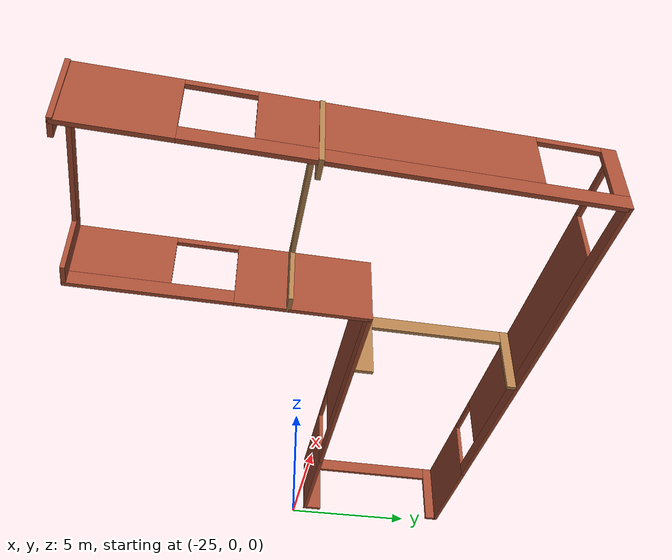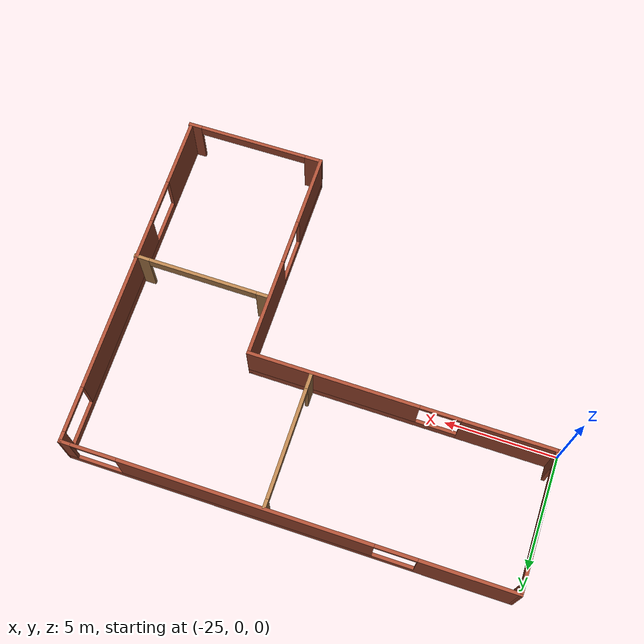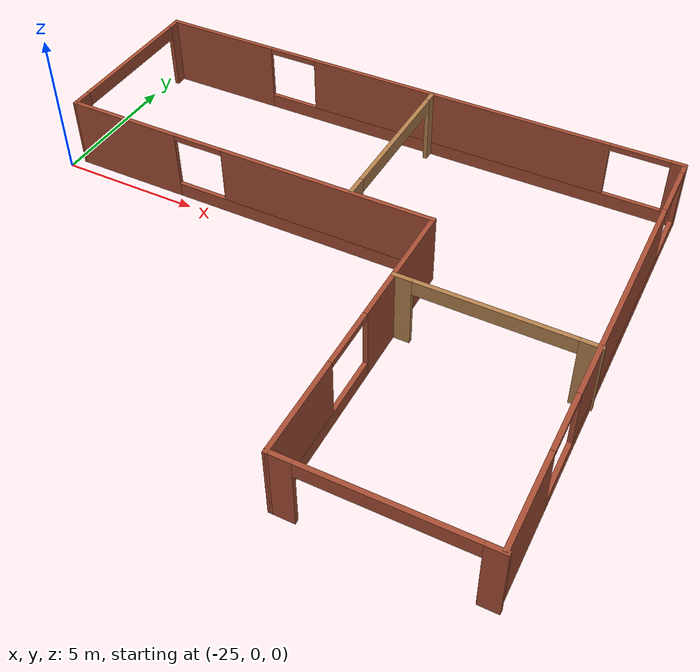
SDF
<?xml version='1.0'?>
<sdf version='1.6'>
  <model name='Building_01'>
    <pose frame=''>-14.907 -1.31654 0 0 -0 0</pose>
    <link name='Wall_1'>
      <pose frame=''>-0.117558 7.8209 0 0 -0 0</pose>
      <visual name='Wall_1_Visual_0'>
        <pose frame=''>-7.62078 0 1.25 0 -0 0</pose>
        <geometry>
          <box>
            <size>4.25844 0.15 2.5</size>
          </box>
        </geometry>
        <material>
          <script>
            <uri>file://media/materials/scripts/gazebo.material</uri>
            <name>Gazebo/Bricks</name>
          </script>
          <ambient>1 1 1 1</ambient>
        </material>
        <meta>
          <layer>0</layer>
        </meta>
      </visual>
      <collision name='Wall_1_Collision_0'>
        <geometry>
          <box>
            <size>4.25844 0.15 2.5</size>
          </box>
        </geometry>
        <pose frame=''>-7.62078 0 1.25 0 -0 0</pose>
      </collision>
      <visual name='Wall_1_Visual_1'>
        <pose frame=''>2.12922 0 0.25 0 -0 0</pose>
        <geometry>
          <box>
            <size>15.2416 0.15 0.5</size>
          </box>
        </geometry>
        <material>
          <script>
            <uri>file://media/materials/scripts/gazebo.material</uri>
            <name>Gazebo/Bricks</name>
          </script>
          <ambient>1 1 1 1</ambient>
        </material>
        <meta>
          <layer>0</layer>
        </meta>
      </visual>
      <collision name='Wall_1_Collision_1'>
        <geometry>
          <box>
            <size>15.2416 0.15 0.5</size>
          </box>
        </geometry>
        <pose frame=''>2.12922 0 0.25 0 -0 0</pose>
      </collision>
      <visual name='Wall_1_Visual_2'>
        <pose frame=''>1.79308 0 1.5 0 -0 0</pose>
        <geometry>
          <box>
            <size>10.9693 0.15 2</size>
          </box>
        </geometry>
        <material>
          <script>
            <uri>file://media/materials/scripts/gazebo.material</uri>
            <name>Gazebo/Bricks</name>
          </script>
          <ambient>1 1 1 1</ambient>
        </material>
        <meta>
          <layer>0</layer>
        </meta>
      </visual>
      <collision name='Wall_1_Collision_2'>
        <geometry>
          <box>
            <size>10.9693 0.15 2</size>
          </box>
        </geometry>
        <pose frame=''>1.79308 0 1.5 0 -0 0</pose>
      </collision>
      <visual name='Wall_1_Visual_3'>
        <pose frame=''>9.51386 0 1.5 0 -0 0</pose>
        <geometry>
          <box>
            <size>0.472274 0.15 2</size>
          </box>
        </geometry>
        <material>
          <script>
            <uri>file://media/materials/scripts/gazebo.material</uri>
            <name>Gazebo/Bricks</name>
          </script>
          <ambient>1 1 1 1</ambient>
        </material>
        <meta>
          <layer>0</layer>
        </meta>
      </visual>
      <collision name='Wall_1_Collision_3'>
        <geometry>
          <box>
            <size>0.472274 0.15 2</size>
          </box>
        </geometry>
        <pose frame=''>9.51386 0 1.5 0 -0 0</pose>
      </collision>
      <visual name='Wall_1_Visual_4'>
        <pose frame=''>-4.59156 0 2.4 0 -0 0</pose>
        <geometry>
          <box>
            <size>1.8 0.15 0.2</size>
          </box>
        </geometry>
        <material>
          <script>
            <uri>file://media/materials/scripts/gazebo.material</uri>
            <name>Gazebo/Bricks</name>
          </script>
          <ambient>1 1 1 1</ambient>
        </material>
        <meta>
          <layer>0</layer>
        </meta>
      </visual>
      <collision name='Wall_1_Collision_4'>
        <geometry>
          <box>
            <size>1.8 0.15 0.2</size>
          </box>
        </geometry>
        <pose frame=''>-4.59156 0 2.4 0 -0 0</pose>
      </collision>
      <visual name='Wall_1_Visual_5'>
        <pose frame=''>8.27773 0 2.4 0 -0 0</pose>
        <geometry>
          <box>
            <size>2 0.15 0.2</size>
          </box>
        </geometry>
        <material>
          <script>
            <uri>file://media/materials/scripts/gazebo.material</uri>
            <name>Gazebo/Bricks</name>
          </script>
          <ambient>1 1 1 1</ambient>
        </material>
        <meta>
          <layer>0</layer>
        </meta>
      </visual>
      <collision name='Wall_1_Collision_5'>
        <geometry>
          <box>
            <size>2 0.15 0.2</size>
          </box>
        </geometry>
        <pose frame=''>8.27773 0 2.4 0 -0 0</pose>
      </collision>
    </link>
    <link name='Wall_15'>
      <pose frame=''>0.81395 4.81357 0 0 0 -1.5708</pose>
      <visual name='Wall_15_Visual_0'>
        <pose frame=''>-2.79794 0 1.25 0 -0 0</pose>
        <geometry>
          <box>
            <size>0.404122 0.15 2.5</size>
          </box>
        </geometry>
        <material>
          <script>
            <uri>file://media/materials/scripts/gazebo.material</uri>
            <name>Gazebo/Wood</name>
          </script>
          <ambient>1 1 1 1</ambient>
        </material>
        <meta>
          <layer>0</layer>
        </meta>
      </visual>
      <collision name='Wall_15_Collision_0'>
        <geometry>
          <box>
            <size>0.404122 0.15 2.5</size>
          </box>
        </geometry>
        <pose frame=''>-2.79794 0 1.25 0 -0 0</pose>
      </collision>
      <visual name='Wall_15_Visual_1'>
        <pose frame=''>2.65206 0 1.25 0 -0 0</pose>
        <geometry>
          <box>
            <size>0.695878 0.15 2.5</size>
          </box>
        </geometry>
        <material>
          <script>
            <uri>file://media/materials/scripts/gazebo.material</uri>
            <name>Gazebo/Wood</name>
          </script>
          <ambient>1 1 1 1</ambient>
        </material>
        <meta>
          <layer>0</layer>
        </meta>
      </visual>
      <collision name='Wall_15_Collision_1'>
        <geometry>
          <box>
            <size>0.695878 0.15 2.5</size>
          </box>
        </geometry>
        <pose frame=''>2.65206 0 1.25 0 -0 0</pose>
      </collision>
      <visual name='Wall_15_Visual_2'>
        <pose frame=''>-0.145878 0 2.25 0 -0 0</pose>
        <geometry>
          <box>
            <size>4.9 0.15 0.5</size>
          </box>
        </geometry>
        <material>
          <script>
            <uri>file://media/materials/scripts/gazebo.material</uri>
            <name>Gazebo/Wood</name>
          </script>
          <ambient>1 1 1 1</ambient>
        </material>
        <meta>
          <layer>0</layer>
        </meta>
      </visual>
      <collision name='Wall_15_Collision_2'>
        <geometry>
          <box>
            <size>4.9 0.15 0.5</size>
          </box>
        </geometry>
        <pose frame=''>-0.145878 0 2.25 0 -0 0</pose>
      </collision>
    </link>
    <link name='Wall_17'>
      <pose frame=''>6.67825 -0.880227 0 0 -0 0</pose>
      <visual name='Wall_17_Visual_0'>
        <pose frame=''>-2.79981 0 1.25 0 -0 0</pose>
        <geometry>
          <box>
            <size>0.650373 0.15 2.5</size>
          </box>
        </geometry>
        <material>
          <script>
            <uri>file://media/materials/scripts/gazebo.material</uri>
            <name>Gazebo/Wood</name>
          </script>
          <ambient>1 1 1 1</ambient>
        </material>
        <meta>
          <layer>0</layer>
        </meta>
      </visual>
      <collision name='Wall_17_Collision_0'>
        <geometry>
          <box>
            <size>0.650373 0.15 2.5</size>
          </box>
        </geometry>
        <pose frame=''>-2.79981 0 1.25 0 -0 0</pose>
      </collision>
      <visual name='Wall_17_Visual_1'>
        <pose frame=''>2.77519 0 1.25 0 -0 0</pose>
        <geometry>
          <box>
            <size>0.699627 0.15 2.5</size>
          </box>
        </geometry>
        <material>
          <script>
            <uri>file://media/materials/scripts/gazebo.material</uri>
            <name>Gazebo/Wood</name>
          </script>
          <ambient>1 1 1 1</ambient>
        </material>
        <meta>
          <layer>0</layer>
        </meta>
      </visual>
      <collision name='Wall_17_Collision_1'>
        <geometry>
          <box>
            <size>0.699627 0.15 2.5</size>
          </box>
        </geometry>
        <pose frame=''>2.77519 0 1.25 0 -0 0</pose>
      </collision>
      <visual name='Wall_17_Visual_2'>
        <pose frame=''>-0.024627 0 2.25 0 -0 0</pose>
        <geometry>
          <box>
            <size>4.9 0.15 0.5</size>
          </box>
        </geometry>
        <material>
          <script>
            <uri>file://media/materials/scripts/gazebo.material</uri>
            <name>Gazebo/Wood</name>
          </script>
          <ambient>1 1 1 1</ambient>
        </material>
        <meta>
          <layer>0</layer>
        </meta>
      </visual>
      <collision name='Wall_17_Collision_2'>
        <geometry>
          <box>
            <size>4.9 0.15 0.5</size>
          </box>
        </geometry>
        <pose frame=''>-0.024627 0 2.25 0 -0 0</pose>
      </collision>
    </link>
    <link name='Wall_3'>
      <pose frame=''>-9.7657 4.80005 0 0 -0 1.57969</pose>
      <visual name='Wall_3_Visual_0'>
        <pose frame=''>-2.72265 0 1.25 0 -0 0</pose>
        <geometry>
          <box>
            <size>0.746656 0.15 2.5</size>
          </box>
        </geometry>
        <material>
          <script>
            <uri>file://media/materials/scripts/gazebo.material</uri>
            <name>Gazebo/Bricks</name>
          </script>
          <ambient>1 1 1 1</ambient>
        </material>
        <meta>
          <layer>0</layer>
        </meta>
      </visual>
      <collision name='Wall_3_Collision_0'>
        <geometry>
          <box>
            <size>0.746656 0.15 2.5</size>
          </box>
        </geometry>
        <pose frame=''>-2.72265 0 1.25 0 -0 0</pose>
      </collision>
      <visual name='Wall_3_Visual_1'>
        <pose frame=''>2.82333 0 1.25 0 -0 0</pose>
        <geometry>
          <box>
            <size>0.545296 0.15 2.5</size>
          </box>
        </geometry>
        <material>
          <script>
            <uri>file://media/materials/scripts/gazebo.material</uri>
            <name>Gazebo/Bricks</name>
          </script>
          <ambient>1 1 1 1</ambient>
        </material>
        <meta>
          <layer>0</layer>
        </meta>
      </visual>
      <collision name='Wall_3_Collision_1'>
        <geometry>
          <box>
            <size>0.545296 0.15 2.5</size>
          </box>
        </geometry>
        <pose frame=''>2.82333 0 1.25 0 -0 0</pose>
      </collision>
      <visual name='Wall_3_Visual_2'>
        <pose frame=''>0.10068 0 2.25 0 -0 0</pose>
        <geometry>
          <box>
            <size>4.9 0.15 0.5</size>
          </box>
        </geometry>
        <material>
          <script>
            <uri>file://media/materials/scripts/gazebo.material</uri>
            <name>Gazebo/Bricks</name>
          </script>
          <ambient>1 1 1 1</ambient>
        </material>
        <meta>
          <layer>0</layer>
        </meta>
      </visual>
      <collision name='Wall_3_Collision_2'>
        <geometry>
          <box>
            <size>4.9 0.15 0.5</size>
          </box>
        </geometry>
        <pose frame=''>0.10068 0 2.25 0 -0 0</pose>
      </collision>
    </link>
    <link name='Wall_5'>
      <pose frame=''>9.67495 0.031998 0 0 -0 1.57991</pose>
      <visual name='Wall_5_Visual_0'>
        <pose frame=''>-6.27757 0 1.25 0 -0 0</pose>
        <geometry>
          <box>
            <size>3.17332 0.15 2.5</size>
          </box>
        </geometry>
        <material>
          <script>
            <uri>file://media/materials/scripts/gazebo.material</uri>
            <name>Gazebo/Bricks</name>
          </script>
          <ambient>1 1 1 1</ambient>
        </material>
        <meta>
          <layer>0</layer>
        </meta>
      </visual>
      <collision name='Wall_5_Collision_0'>
        <geometry>
          <box>
            <size>3.17332 0.15 2.5</size>
          </box>
        </geometry>
        <pose frame=''>-6.27757 0 1.25 0 -0 0</pose>
      </collision>
      <visual name='Wall_5_Visual_1'>
        <pose frame=''>1.58666 0 0.25 0 -0 0</pose>
        <geometry>
          <box>
            <size>12.5551 0.15 0.5</size>
          </box>
        </geometry>
        <material>
          <script>
            <uri>file://media/materials/scripts/gazebo.material</uri>
            <name>Gazebo/Bricks</name>
          </script>
          <ambient>1 1 1 1</ambient>
        </material>
        <meta>
          <layer>0</layer>
        </meta>
      </visual>
      <collision name='Wall_5_Collision_1'>
        <geometry>
          <box>
            <size>12.5551 0.15 0.5</size>
          </box>
        </geometry>
        <pose frame=''>1.58666 0 0.25 0 -0 0</pose>
      </collision>
      <visual name='Wall_5_Visual_2'>
        <pose frame=''>1.3396 0 1.5 0 -0 0</pose>
        <geometry>
          <box>
            <size>8.06103 0.15 2</size>
          </box>
        </geometry>
        <material>
          <script>
            <uri>file://media/materials/scripts/gazebo.material</uri>
            <name>Gazebo/Bricks</name>
          </script>
          <ambient>1 1 1 1</ambient>
        </material>
        <meta>
          <layer>0</layer>
        </meta>
      </visual>
      <collision name='Wall_5_Collision_2'>
        <geometry>
          <box>
            <size>8.06103 0.15 2</size>
          </box>
        </geometry>
        <pose frame=''>1.3396 0 1.5 0 -0 0</pose>
      </collision>
      <visual name='Wall_5_Visual_3'>
        <pose frame=''>7.61717 0 1.5 0 -0 0</pose>
        <geometry>
          <box>
            <size>0.494109 0.15 2</size>
          </box>
        </geometry>
        <material>
          <script>
            <uri>file://media/materials/scripts/gazebo.material</uri>
            <name>Gazebo/Bricks</name>
          </script>
          <ambient>1 1 1 1</ambient>
        </material>
        <meta>
          <layer>0</layer>
        </meta>
      </visual>
      <collision name='Wall_5_Collision_3'>
        <geometry>
          <box>
            <size>0.494109 0.15 2</size>
          </box>
        </geometry>
        <pose frame=''>7.61717 0 1.5 0 -0 0</pose>
      </collision>
      <visual name='Wall_5_Visual_4'>
        <pose frame=''>-3.69091 0 2.4 0 -0 0</pose>
        <geometry>
          <box>
            <size>2 0.15 0.2</size>
          </box>
        </geometry>
        <material>
          <script>
            <uri>file://media/materials/scripts/gazebo.material</uri>
            <name>Gazebo/Bricks</name>
          </script>
          <ambient>1 1 1 1</ambient>
        </material>
        <meta>
          <layer>0</layer>
        </meta>
      </visual>
      <collision name='Wall_5_Collision_4'>
        <geometry>
          <box>
            <size>2 0.15 0.2</size>
          </box>
        </geometry>
        <pose frame=''>-3.69091 0 2.4 0 -0 0</pose>
      </collision>
      <visual name='Wall_5_Visual_5'>
        <pose frame=''>6.37012 0 2.4 0 -0 0</pose>
        <geometry>
          <box>
            <size>2 0.15 0.2</size>
          </box>
        </geometry>
        <material>
          <script>
            <uri>file://media/materials/scripts/gazebo.material</uri>
            <name>Gazebo/Bricks</name>
          </script>
          <ambient>1 1 1 1</ambient>
        </material>
        <meta>
          <layer>0</layer>
        </meta>
      </visual>
      <collision name='Wall_5_Collision_5'>
        <geometry>
          <box>
            <size>2 0.15 0.2</size>
          </box>
        </geometry>
        <pose frame=''>6.37012 0 2.4 0 -0 0</pose>
      </collision>
    </link>
    <link name='Wall_7'>
      <pose frame=''>-3.06383 1.77919 0 0 -0 0</pose>
      <visual name='Wall_7_Visual_0'>
        <pose frame=''>-4.68282 0 1.25 0 -0 0</pose>
        <geometry>
          <box>
            <size>4.13436 0.15 2.5</size>
          </box>
        </geometry>
        <material>
          <script>
            <uri>file://media/materials/scripts/gazebo.material</uri>
            <name>Gazebo/Bricks</name>
          </script>
          <ambient>1 1 1 1</ambient>
        </material>
        <meta>
          <layer>0</layer>
        </meta>
      </visual>
      <collision name='Wall_7_Collision_0'>
        <geometry>
          <box>
            <size>4.13436 0.15 2.5</size>
          </box>
        </geometry>
        <pose frame=''>-4.68282 0 1.25 0 -0 0</pose>
      </collision>
      <visual name='Wall_7_Visual_1'>
        <pose frame=''>2.06718 0 0.25 0 -0 0</pose>
        <geometry>
          <box>
            <size>9.36564 0.15 0.5</size>
          </box>
        </geometry>
        <material>
          <script>
            <uri>file://media/materials/scripts/gazebo.material</uri>
            <name>Gazebo/Bricks</name>
          </script>
          <ambient>1 1 1 1</ambient>
        </material>
        <meta>
          <layer>0</layer>
        </meta>
      </visual>
      <collision name='Wall_7_Collision_1'>
        <geometry>
          <box>
            <size>9.36564 0.15 0.5</size>
          </box>
        </geometry>
        <pose frame=''>2.06718 0 0.25 0 -0 0</pose>
      </collision>
      <visual name='Wall_7_Visual_2'>
        <pose frame=''>2.96718 0 1.5 0 -0 0</pose>
        <geometry>
          <box>
            <size>7.56564 0.15 2</size>
          </box>
        </geometry>
        <material>
          <script>
            <uri>file://media/materials/scripts/gazebo.material</uri>
            <name>Gazebo/Bricks</name>
          </script>
          <ambient>1 1 1 1</ambient>
        </material>
        <meta>
          <layer>0</layer>
        </meta>
      </visual>
      <collision name='Wall_7_Collision_2'>
        <geometry>
          <box>
            <size>7.56564 0.15 2</size>
          </box>
        </geometry>
        <pose frame=''>2.96718 0 1.5 0 -0 0</pose>
      </collision>
      <visual name='Wall_7_Visual_3'>
        <pose frame=''>-1.71564 0 2.4 0 -0 0</pose>
        <geometry>
          <box>
            <size>1.8 0.15 0.2</size>
          </box>
        </geometry>
        <material>
          <script>
            <uri>file://media/materials/scripts/gazebo.material</uri>
            <name>Gazebo/Bricks</name>
          </script>
          <ambient>1 1 1 1</ambient>
        </material>
        <meta>
          <layer>0</layer>
        </meta>
      </visual>
      <collision name='Wall_7_Collision_3'>
        <geometry>
          <box>
            <size>1.8 0.15 0.2</size>
          </box>
        </geometry>
        <pose frame=''>-1.71564 0 2.4 0 -0 0</pose>
      </collision>
    </link>
    <link name='Wall_8'>
      <pose frame=''>3.61117 -3.02081 0 0 0 -1.5708</pose>
      <visual name='Wall_8_Visual_0'>
        <pose frame=''>-2.63582 0 1.25 0 -0 0</pose>
        <geometry>
          <box>
            <size>4.47836 0.15 2.5</size>
          </box>
        </geometry>
        <material>
          <script>
            <uri>file://media/materials/scripts/gazebo.material</uri>
            <name>Gazebo/Bricks</name>
          </script>
          <ambient>1 1 1 1</ambient>
        </material>
        <meta>
          <layer>0</layer>
        </meta>
      </visual>
      <collision name='Wall_8_Collision_0'>
        <geometry>
          <box>
            <size>4.47836 0.15 2.5</size>
          </box>
        </geometry>
        <pose frame=''>-2.63582 0 1.25 0 -0 0</pose>
      </collision>
      <visual name='Wall_8_Visual_1'>
        <pose frame=''>2.23918 0 0.25 0 -0 0</pose>
        <geometry>
          <box>
            <size>5.27164 0.15 0.5</size>
          </box>
        </geometry>
        <material>
          <script>
            <uri>file://media/materials/scripts/gazebo.material</uri>
            <name>Gazebo/Bricks</name>
          </script>
          <ambient>1 1 1 1</ambient>
        </material>
        <meta>
          <layer>0</layer>
        </meta>
      </visual>
      <collision name='Wall_8_Collision_1'>
        <geometry>
          <box>
            <size>5.27164 0.15 0.5</size>
          </box>
        </geometry>
        <pose frame=''>2.23918 0 0.25 0 -0 0</pose>
      </collision>
      <visual name='Wall_8_Visual_2'>
        <pose frame=''>3.23918 0 1.5 0 -0 0</pose>
        <geometry>
          <box>
            <size>3.27164 0.15 2</size>
          </box>
        </geometry>
        <material>
          <script>
            <uri>file://media/materials/scripts/gazebo.material</uri>
            <name>Gazebo/Bricks</name>
          </script>
          <ambient>1 1 1 1</ambient>
        </material>
        <meta>
          <layer>0</layer>
        </meta>
      </visual>
      <collision name='Wall_8_Collision_2'>
        <geometry>
          <box>
            <size>3.27164 0.15 2</size>
          </box>
        </geometry>
        <pose frame=''>3.23918 0 1.5 0 -0 0</pose>
      </collision>
      <visual name='Wall_8_Visual_3'>
        <pose frame=''>0.60336 0 2.4 0 -0 0</pose>
        <geometry>
          <box>
            <size>2 0.15 0.2</size>
          </box>
        </geometry>
        <material>
          <script>
            <uri>file://media/materials/scripts/gazebo.material</uri>
            <name>Gazebo/Bricks</name>
          </script>
          <ambient>1 1 1 1</ambient>
        </material>
        <meta>
          <layer>0</layer>
        </meta>
      </visual>
      <collision name='Wall_8_Collision_3'>
        <geometry>
          <box>
            <size>2 0.15 0.2</size>
          </box>
        </geometry>
        <pose frame=''>0.60336 0 2.4 0 -0 0</pose>
      </collision>
    </link>
    <link name='Wall_9'>
      <pose frame=''>6.70181 -7.78886 0 0 -0 0.010338</pose>
      <visual name='Wall_9_Visual_0'>
        <pose frame=''>-2.76066 0 1.25 0 -0 0</pose>
        <geometry>
          <box>
            <size>0.81029 0.15 2.5</size>
          </box>
        </geometry>
        <material>
          <script>
            <uri>file://media/materials/scripts/gazebo.material</uri>
            <name>Gazebo/Bricks</name>
          </script>
          <ambient>1 1 1 1</ambient>
        </material>
        <meta>
          <layer>0</layer>
        </meta>
      </visual>
      <collision name='Wall_9_Collision_0'>
        <geometry>
          <box>
            <size>0.81029 0.15 2.5</size>
          </box>
        </geometry>
        <pose frame=''>-2.76066 0 1.25 0 -0 0</pose>
      </collision>
      <visual name='Wall_9_Visual_1'>
        <pose frame=''>2.85514 0 1.25 0 -0 0</pose>
        <geometry>
          <box>
            <size>0.621325 0.15 2.5</size>
          </box>
        </geometry>
        <material>
          <script>
            <uri>file://media/materials/scripts/gazebo.material</uri>
            <name>Gazebo/Bricks</name>
          </script>
          <ambient>1 1 1 1</ambient>
        </material>
        <meta>
          <layer>0</layer>
        </meta>
      </visual>
      <collision name='Wall_9_Collision_1'>
        <geometry>
          <box>
            <size>0.621325 0.15 2.5</size>
          </box>
        </geometry>
        <pose frame=''>2.85514 0 1.25 0 -0 0</pose>
      </collision>
      <visual name='Wall_9_Visual_2'>
        <pose frame=''>0.094483 0 2.25 0 -0 0</pose>
        <geometry>
          <box>
            <size>4.9 0.15 0.5</size>
          </box>
        </geometry>
        <material>
          <script>
            <uri>file://media/materials/scripts/gazebo.material</uri>
            <name>Gazebo/Bricks</name>
          </script>
          <ambient>1 1 1 1</ambient>
        </material>
        <meta>
          <layer>0</layer>
        </meta>
      </visual>
      <collision name='Wall_9_Collision_2'>
        <geometry>
          <box>
            <size>4.9 0.15 0.5</size>
          </box>
        </geometry>
        <pose frame=''>0.094483 0 2.25 0 -0 0</pose>
      </collision>
    </link>
    <static>1</static>
  </model>
</sdf>
